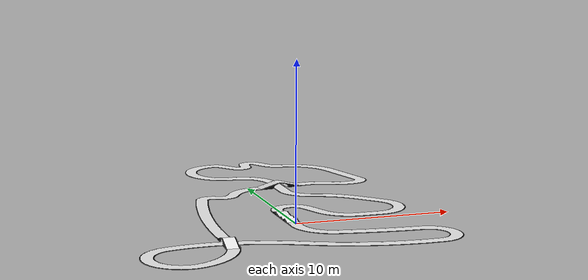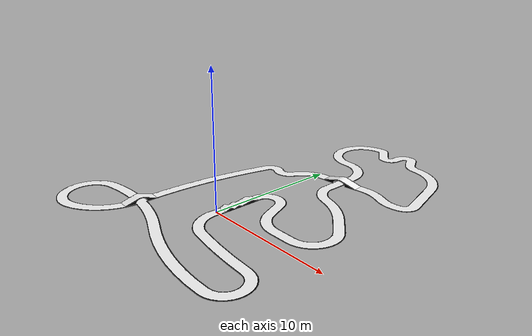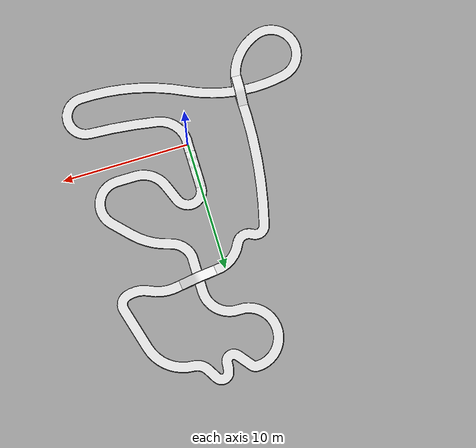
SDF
<?xml version="1.0" ?>
<sdf version="1.6">
  <model name='Raceway_1'>
    <pose>0 0 0 0 0 0</pose>
    <self_collide>false</self_collide>
    <static>true</static>
    <link name='Raceway_1/Base'>
      <visual name='Raceway_1/TrackVisual'>
        <pose>0 0 -.045 0 0 0</pose>
        <geometry>
          <mesh>
            <scale>0.35 0.35 0.35</scale>
            <uri>model://Raceway_1/meshes/track2.dae</uri>
          </mesh>
        </geometry>

      </visual>
      <collision name='Raceway_1/RumbleCollision'>
        <pose>-0.007 2 -0.05 0 0 0</pose>
        <geometry>
          <mesh>
            <scale>0.35 .3605 0.35</scale>
            <uri>model://Raceway_1/meshes/rumble_new.dae</uri>
          </mesh>
        </geometry>
      </collision>
      <visual name='Raceway_1/RumbleVisual'>
        <pose>-0.007 2 -0.05 0 0 0</pose>
        <geometry>
          <mesh>
            <scale>0.35 0.3605 0.35</scale>
            <uri>model://Raceway_1/meshes/rumble_new.dae</uri>
          </mesh>
        </geometry>

      </visual>
      <collision name='Raceway_1/BridgeCollision'>
        <pose>2.2 10.1 -0.05 0 0 -1.447</pose>
        <geometry>
          <mesh>
            <scale>0.35 0.3605 0.21</scale>
            <uri>model://Raceway_1/meshes/Bridge_new.dae</uri>
          </mesh>
        </geometry>
      </collision>
      <visual name='Raceway_1/BridgeVisual'>
        <pose>2.2 10.1 -0.05 0 0 -1.447</pose>
        <geometry>
          <mesh>
            <scale>0.35 0.3605 0.21</scale>
            <uri>model://Raceway_1/meshes/Bridge_new.dae</uri>
          </mesh>
        </geometry>
      </visual>
      <collision name='Raceway_1/BridgeCollision2'>
        <pose>-5.1 -3 -0.045 0 0 -0.063</pose>
        <geometry>
          <mesh>
            <scale>0.35 0.3 0.21</scale>
            <uri>model://Raceway_1/meshes/Bridge_new.dae</uri>
          </mesh>
        </geometry>
      </collision>
      <visual name='Raceway_1/BridgeVisual2'>
        <pose>-5.1 -3 -0.045 0 0 -0.063</pose>
        <geometry>
          <mesh>
            <scale>0.35 0.3 0.21</scale>
            <uri>model://Raceway_1/meshes/Bridge_new.dae</uri>
          </mesh>
        </geometry>
      </visual>

    </link>
  </model>
</sdf>
